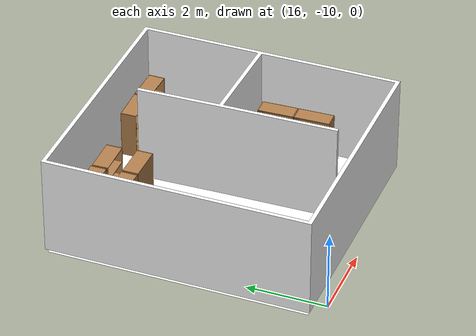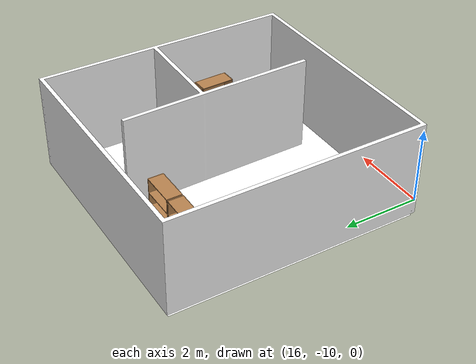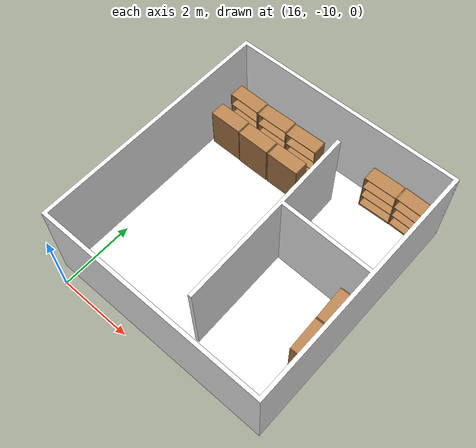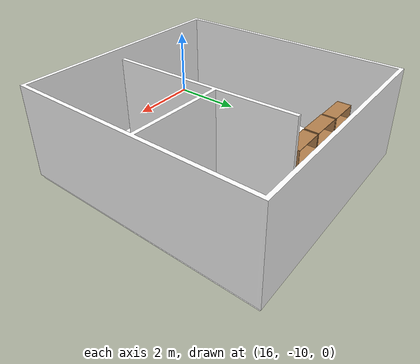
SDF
<sdf version="1.7">
 <world name="world">
  <scene><ambient>0.8 0.8 0.8 1.0</ambient><background>0 0 0</background><grid>false</grid></scene>
  <include><uri>model://sun</uri></include>
  <include>
   <name>OpenRobotics/Bookshelf</name>
   <uri>model://Bookshelf</uri>
   <pose>16.2117638705566 -3.425820848894034 0.0 0 0 -0.0127</pose>
   <static>True</static>
  </include>
  <include>
   <name>OpenRobotics/Bookshelf_2</name>
   <uri>model://Bookshelf</uri>
   <pose>18.08054300912444 -3.437575132066961 0.0 0 0 0.0253</pose>
   <static>True</static>
  </include>
  <include>
   <name>OpenRobotics/Bookshelf_3</name>
   <uri>model://Bookshelf</uri>
   <pose>17.140276298254058 -3.437575132066961 0.0 0 0 0.0179</pose>
   <static>True</static>
  </include>
  <include>
   <name>OpenRobotics/Bookshelf_4</name>
   <uri>model://Bookshelf</uri>
   <pose>17.186820896948863 -4.593384850381173 0.0 0 0 3.1349</pose>
   <static>True</static>
  </include>
  <include>
   <name>OpenRobotics/Bookshelf_5</name>
   <uri>model://Bookshelf</uri>
   <pose>16.247026720075382 -4.577656218770021 0.0 0 0 3.1395</pose>
   <static>True</static>
  </include>
  <include>
   <name>OpenRobotics/Bookshelf_6</name>
   <uri>model://Bookshelf</uri>
   <pose>18.138234347281873 -4.593384850381173 0.0 0 0 -3.1371</pose>
   <static>True</static>
  </include>
  <include>
   <name>OpenRobotics/Bookshelf_7</name>
   <uri>model://Bookshelf</uri>
   <pose>21.70839745601517 -7.627331568023298 0.0 0 0 -1.5408</pose>
   <static>True</static>
  </include>
  <include>
   <name>OpenRobotics/Bookshelf_8</name>
   <uri>model://Bookshelf</uri>
   <pose>21.67770806053783 -6.696380527377544 0.0 0 0 -1.5341</pose>
   <static>True</static>
  </include>
  <include>
   <name>OpenRobotics/Bookshelf_9</name>
   <uri>model://Bookshelf</uri>
   <pose>21.28577486253631 -3.178432425301874 0.0 0 0 -0.0217</pose>
   <static>True</static>
  </include>
  <include>
   <name>OpenRobotics/Bookshelf_10</name>
   <uri>model://Bookshelf</uri>
   <pose>20.349862214923085 -3.19043141358034 0.0 0 0 0.0256</pose>
   <static>True</static>
  </include>
  <include><name>office_L1</name><uri>model://office_L1</uri></include>
  <physics type="ode">
   <real_time_update_rate>1000.0</real_time_update_rate>
   <max_step_size>0.001</max_step_size>
   <real_time_factor>1</real_time_factor>
   <ode>
    <solver>
     <type>quick</type>
     <iters>150</iters>
     <precon_iters>0</precon_iters>
     <sor>1.400000</sor>
     <use_dynamic_moi_rescaling>1</use_dynamic_moi_rescaling>
    </solver>
    <constraints>
     <cfm>0.00001</cfm>
     <erp>0.2</erp>
     <contact_max_correcting_vel>2000.000000</contact_max_correcting_vel>
     <contact_surface_layer>0.01000</contact_surface_layer>
    </constraints>
   </ode>
  </physics>
 </world>
</sdf>

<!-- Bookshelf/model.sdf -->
<sdf version="1.5">
    <model name="bookshelf">
        <static>true</static>
        <link name="link">
            <inertial>
                <mass>1.0</mass>
            </inertial>
            <collision name="back">
                <pose>0 0.005 0.6 0 0 0</pose>
                <geometry>
                    <box>
                        <size>0.9 0.01 1.2</size>
                    </box>
                </geometry>
            </collision>
            <visual name="visual1">
                <pose>0 0.005 0.6 0 0 0</pose>
                <geometry>
                    <box>
                        <size>0.9 0.01 1.2</size>
                    </box>
                </geometry>
                <material>
                    <diffuse>1.0 1.0 1.0</diffuse>
                    <script>
                        <uri>file://media/materials/scripts/gazebo.material</uri>
                        <name>Gazebo/Wood</name>
                    </script>

                    <pbr>
                        <metal>
                            <albedo_map>https://fuel.gazebosim.org/1.0/openrobotics/models/bookshelf/3/files/bookshelf_diffuse.jpg</albedo_map>
                        </metal>
                    </pbr>
                </material>
            </visual>
            <collision name="left_side">
                <pose>0.45 -0.195 0.6 0 0 0</pose>
                <geometry>
                    <box>
                        <size>0.02 0.4 1.2</size>
                    </box>
                </geometry>
            </collision>
            <visual name="visual2">
                <pose>0.45 -0.195 0.6 0 0 0</pose>
                <geometry>
                    <box>
                        <size>0.02 0.4 1.2</size>
                    </box>
                </geometry>
                <material>
                    <diffuse>1.0 1.0 1.0</diffuse>
                    <script>
                        <uri>file://media/materials/scripts/gazebo.material</uri>
                        <name>Gazebo/Wood</name>
                    </script>

                    <pbr>
                        <metal>
                            <albedo_map>https://fuel.gazebosim.org/1.0/openrobotics/models/bookshelf/3/files/bookshelf_diffuse.jpg</albedo_map>
                        </metal>
                    </pbr>
                </material>
            </visual>
            <collision name="right_side">
                <pose>-0.45 -0.195 0.6 0 0 0</pose>
                <geometry>
                    <box>
                        <size>0.02 0.4 1.2</size>
                    </box>
                </geometry>
            </collision>
            <visual name="visual3">
                <pose>-0.45 -0.195 0.6 0 0 0</pose>
                <geometry>
                    <box>
                        <size>0.02 0.4 1.2</size>
                    </box>
                </geometry>
                <material>
                    <diffuse>1.0 1.0 1.0</diffuse>
                    <script>
                        <uri>file://media/materials/scripts/gazebo.material</uri>
                        <name>Gazebo/Wood</name>
                    </script>

                    <pbr>
                        <metal>
                            <albedo_map>https://fuel.gazebosim.org/1.0/openrobotics/models/bookshelf/3/files/bookshelf_diffuse.jpg</albedo_map>
                        </metal>
                    </pbr>
                </material>
            </visual>
            <collision name="bottom">
                <pose>0 -0.195 0.03 0 0 0</pose>
                <geometry>
                    <box>
                        <size>0.88 0.4 0.06</size>
                    </box>
                </geometry>
            </collision>
            <visual name="visual4">
                <pose>0 -0.195 0.03 0 0 0</pose>
                <geometry>
                    <box>
                        <size>0.88 0.4 0.06</size>
                    </box>
                </geometry>
                <material>
                    <diffuse>1.0 1.0 1.0</diffuse>
                    <script>
                        <uri>file://media/materials/scripts/gazebo.material</uri>
                        <name>Gazebo/Wood</name>
                    </script>

                    <pbr>
                        <metal>
                            <albedo_map>https://fuel.gazebosim.org/1.0/openrobotics/models/bookshelf/3/files/bookshelf_diffuse.jpg</albedo_map>
                        </metal>
                    </pbr>
                </material>
            </visual>
            <collision name="top">
                <pose>0 -0.195 1.19 0 0 0</pose>
                <geometry>
                    <box>
                        <size>0.88 0.4 0.02</size>
                    </box>
                </geometry>
            </collision>
            <visual name="visual5">
                <pose>0 -0.195 1.19 0 0 0</pose>
                <geometry>
                    <box>
                        <size>0.88 0.4 0.02</size>
                    </box>
                </geometry>
                <material>
                    <diffuse>1.0 1.0 1.0</diffuse>
                    <script>
                        <uri>file://media/materials/scripts/gazebo.material</uri>
                        <name>Gazebo/Wood</name>
                    </script>

                    <pbr>
                        <metal>
                            <albedo_map>https://fuel.gazebosim.org/1.0/openrobotics/models/bookshelf/3/files/bookshelf_diffuse.jpg</albedo_map>
                        </metal>
                    </pbr>
                </material>
            </visual>
            <collision name="low_shelf">
                <pose>0 -0.195 0.43 0 0 0</pose>
                <geometry>
                    <box>
                        <size>0.88 0.4 0.02</size>
                    </box>
                </geometry>
            </collision>
            <visual name="visual6">
                <pose>0 -0.195 0.43 0 0 0</pose>
                <geometry>
                    <box>
                        <size>0.88 0.4 0.02</size>
                    </box>
                </geometry>
                <material>
                    <diffuse>1.0 1.0 1.0</diffuse>
                    <script>
                        <uri>file://media/materials/scripts/gazebo.material</uri>
                        <name>Gazebo/Wood</name>
                    </script>

                    <pbr>
                        <metal>
                            <albedo_map>https://fuel.gazebosim.org/1.0/openrobotics/models/bookshelf/3/files/bookshelf_diffuse.jpg</albedo_map>
                        </metal>
                    </pbr>
                </material>
            </visual>
            <collision name="high_shelf">
                <pose>0 -0.195 0.8 0 0 0</pose>
                <geometry>
                    <box>
                        <size>0.88 0.4 0.02</size>
                    </box>
                </geometry>
            </collision>
            <visual name="visual7">
                <pose>0 -0.195 0.8 0 0 0</pose>
                <geometry>
                    <box>
                        <size>0.88 0.4 0.02</size>
                    </box>
                </geometry>
                <material>
                    <diffuse>1.0 1.0 1.0</diffuse>
                    <script>
                        <uri>file://media/materials/scripts/gazebo.material</uri>
                        <name>Gazebo/Wood</name>
                    </script>

                    <pbr>
                        <metal>
                            <albedo_map>https://fuel.gazebosim.org/1.0/openrobotics/models/bookshelf/3/files/bookshelf_diffuse.jpg</albedo_map>
                        </metal>
                    </pbr>
                </material>
            </visual>
        </link>
    </model>
</sdf>

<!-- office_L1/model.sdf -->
<sdf version="1.7">
  <model name="office_L1">
    <static>true</static>
    <link name="floor_1">
      <visual name="visual">
        <geometry>
          <mesh>
            <uri>model://office_L1/meshes/floor_1.obj</uri>
          </mesh>
        </geometry>
        <material>
          <diffuse>1.0 1.0 1.0</diffuse>
          <specular>0.1 0.1 0.1</specular>
          <pbr>
            <metal>
              <metalness>0.0</metalness>
              <albedo_map>model://office_L1/meshes/blue_linoleum.png</albedo_map>
            </metal>
          </pbr>
          <script>
            <uri>model://office_L1/meshes/</uri>
            <name>floor_1_Diffuse</name>
          </script>
        </material>
      </visual>
      <collision name="collision">
        <geometry>
          <mesh>
            <uri>model://office_L1/meshes/floor_1.obj</uri>
          </mesh>
        </geometry>
        <surface>
          <contact>
            <collide_bitmask>0x01</collide_bitmask>
          </contact>
        </surface>
      </collision>
    </link>
    <link name="wall_1">
      <visual name="wall_1">
        <geometry>
          <mesh>
            <uri>model://office_L1/meshes/wall_1.obj</uri>
          </mesh>
        </geometry>
        <transparency>0.0</transparency>
        <material>
          <diffuse>1.0 1.0 1.0</diffuse>
          <specular>0.1 0.1 0.1</specular>
          <pbr>
            <metal>
              <metalness>0.0</metalness>
              <albedo_map>model://office_L1/meshes/default.png</albedo_map>
            </metal>
          </pbr>
          <script>
            <uri>model://office_L1/meshes/</uri>
            <name>wall_1_Diffuse</name>
          </script>
        </material>
      </visual>
      <collision name="collision">
        <geometry>
          <mesh>
            <uri>model://office_L1/meshes/wall_1.obj</uri>
          </mesh>
        </geometry>
        <surface>
          <contact>
            <collide_bitmask>0x01</collide_bitmask>
          </contact>
        </surface>
      </collision>
      <pose>15.63188431739313 -9.693451376279762 0 0 0 0</pose>
    </link>
  </model>
</sdf>
